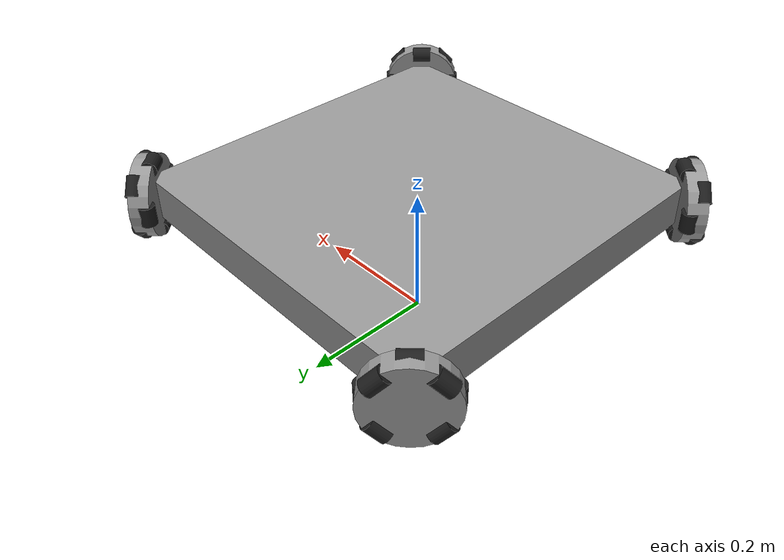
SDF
<?xml version="1.0" ?>
<!-- |    This document was autogenerated by xacro from /home/robostep/nav2-sample/src/OpenBase/openbase_gazebo_models/models/omni4/model.sdf.xacro | -->
<!-- |    EDITING THIS FILE BY HAND IS NOT RECOMMENDED                                 | -->
<sdf version="1.7">
  <model name="omni4_model">
    <pose>0 0 0.2 0 0 0</pose>
    <link name="body_link">
      <inertial>
        <mass>4.0</mass>
        <inertia>
          <ixx>0.0984</ixx>
          <ixy>0</ixy>
          <ixz>0</ixz>
          <iyy>0.0984</iyy>
          <iyz>0</iyz>
          <izz>0.19440000000000002</izz>
        </inertia>
      </inertial>
      <visual name="visual">
        <geometry>
          <box>
            <size>0.54 0.54 0.06</size>
          </box>
        </geometry>
        <material>
          <script>
            <uri>file://media/materials/scripts/gazebo.material</uri>
            <name>Gazebo/Grey</name>
          </script>
        </material>
      </visual>
      <collision name="collision">
        <geometry>
          <box>
            <size>0.54 0.54 0.06</size>
          </box>
        </geometry>
      </collision>
    </link>
    <include>
      <name>simple_omni_wheel_front_left_model</name>
      <uri>model://primitive_omni_wheel</uri>
      <pose>0.27 0.27 0 0 0 2.356194490192345</pose>
    </include>
    <include>
      <name>simple_omni_wheel_back_left_model</name>
      <uri>model://primitive_omni_wheel</uri>
      <pose>-0.27 0.27 0 0 0 3.9269908169872414</pose>
    </include>
    <include>
      <name>simple_omni_wheel_back_right_model</name>
      <uri>model://primitive_omni_wheel</uri>
      <pose>-0.2700000000000001 -0.27 0 0 0 5.497787143782138</pose>
    </include>
    <include>
      <name>simple_omni_wheel_front_right_model</name>
      <uri>model://primitive_omni_wheel</uri>
      <pose>0.26999999999999996 -0.2700000000000001 0 0 0 0.7853981633974483</pose>
    </include>
    <joint name="front_left_linear_joint" type="fixed">
      <parent>body_link</parent>
      <child>front_left_wheel_base_link</child>
      <axis>
        <limit>
          <lower>-0.1</lower>
          <upper>0.1</upper>
        </limit>
        <dynamics>
          <spring_reference>0.0</spring_reference>
          <spring_stiffness>2000.0</spring_stiffness>
          <damping>5.0</damping>
        </dynamics>
        <xyz>0 0 1</xyz>
      </axis>
      <physics>
        <ode>
          <implicit_spring_damper>true</implicit_spring_damper>
        </ode>
      </physics>
    </joint>
    <link name="front_left_wheel_base_link">
      <inertial>
        <mass>0.1</mass>
        <inertia>
          <ixx>0.0002</ixx>
          <ixy>0</ixy>
          <ixz>0</ixz>
          <iyy>0.0002</iyy>
          <iyz>0</iyz>
          <izz>0.0002</izz>
        </inertia>
      </inertial>
    </link>
    <joint name="front_left_rotational_joint" type="revolute">
      <parent>front_left_wheel_base_link</parent>
      <child>simple_omni_wheel_front_left_model::rim_link</child>
      <axis>
        <xyz>0 0 1</xyz>
        <dynamics>
          <spring_reference>0</spring_reference>
          <spring_stiffness>0</spring_stiffness>
          <damping>0</damping>
          <friction>0.0001</friction>
        </dynamics>
      </axis>
      <physics>
        <ode>
          <limit>
            <cfm>0</cfm>
            <erp>0.2</erp>
          </limit>
          <suspension>
            <cfm>0</cfm>
            <erp>0.2</erp>
          </suspension>
        </ode>
      </physics>
    </joint>
    <joint name="front_right_linear_joint" type="fixed">
      <parent>body_link</parent>
      <child>front_right_wheel_base_link</child>
      <axis>
        <limit>
          <lower>-0.1</lower>
          <upper>0.1</upper>
        </limit>
        <dynamics>
          <spring_reference>0.0</spring_reference>
          <spring_stiffness>2000.0</spring_stiffness>
          <damping>5.0</damping>
        </dynamics>
        <xyz>0 0 1</xyz>
      </axis>
      <physics>
        <ode>
          <implicit_spring_damper>true</implicit_spring_damper>
        </ode>
      </physics>
    </joint>
    <link name="front_right_wheel_base_link">
      <inertial>
        <mass>0.1</mass>
        <inertia>
          <ixx>0.0002</ixx>
          <ixy>0</ixy>
          <ixz>0</ixz>
          <iyy>0.0002</iyy>
          <iyz>0</iyz>
          <izz>0.0002</izz>
        </inertia>
      </inertial>
    </link>
    <joint name="front_right_rotational_joint" type="revolute">
      <parent>front_right_wheel_base_link</parent>
      <child>simple_omni_wheel_front_right_model::rim_link</child>
      <axis>
        <xyz>0 0 1</xyz>
        <dynamics>
          <spring_reference>0</spring_reference>
          <spring_stiffness>0</spring_stiffness>
          <damping>0</damping>
          <friction>0.0001</friction>
        </dynamics>
      </axis>
      <physics>
        <ode>
          <limit>
            <cfm>0</cfm>
            <erp>0.2</erp>
          </limit>
          <suspension>
            <cfm>0</cfm>
            <erp>0.2</erp>
          </suspension>
        </ode>
      </physics>
    </joint>
    <joint name="back_left_linear_joint" type="fixed">
      <parent>body_link</parent>
      <child>back_left_wheel_base_link</child>
      <axis>
        <limit>
          <lower>-0.1</lower>
          <upper>0.1</upper>
        </limit>
        <dynamics>
          <spring_reference>0.0</spring_reference>
          <spring_stiffness>2000.0</spring_stiffness>
          <damping>5.0</damping>
        </dynamics>
        <xyz>0 0 1</xyz>
      </axis>
      <physics>
        <ode>
          <implicit_spring_damper>true</implicit_spring_damper>
        </ode>
      </physics>
    </joint>
    <link name="back_left_wheel_base_link">
      <inertial>
        <mass>0.1</mass>
        <inertia>
          <ixx>0.0002</ixx>
          <ixy>0</ixy>
          <ixz>0</ixz>
          <iyy>0.0002</iyy>
          <iyz>0</iyz>
          <izz>0.0002</izz>
        </inertia>
      </inertial>
    </link>
    <joint name="back_left_rotational_joint" type="revolute">
      <parent>back_left_wheel_base_link</parent>
      <child>simple_omni_wheel_back_left_model::rim_link</child>
      <axis>
        <xyz>0 0 1</xyz>
        <dynamics>
          <spring_reference>0</spring_reference>
          <spring_stiffness>0</spring_stiffness>
          <damping>0</damping>
          <friction>0.0001</friction>
        </dynamics>
      </axis>
      <physics>
        <ode>
          <limit>
            <cfm>0</cfm>
            <erp>0.2</erp>
          </limit>
          <suspension>
            <cfm>0</cfm>
            <erp>0.2</erp>
          </suspension>
        </ode>
      </physics>
    </joint>
    <joint name="back_right_linear_joint" type="fixed">
      <parent>body_link</parent>
      <child>back_right_wheel_base_link</child>
      <axis>
        <limit>
          <lower>-0.1</lower>
          <upper>0.1</upper>
        </limit>
        <dynamics>
          <spring_reference>0.0</spring_reference>
          <spring_stiffness>2000.0</spring_stiffness>
          <damping>5.0</damping>
        </dynamics>
        <xyz>0 0 1</xyz>
      </axis>
      <physics>
        <ode>
          <implicit_spring_damper>true</implicit_spring_damper>
        </ode>
      </physics>
    </joint>
    <link name="back_right_wheel_base_link">
      <inertial>
        <mass>0.1</mass>
        <inertia>
          <ixx>0.0002</ixx>
          <ixy>0</ixy>
          <ixz>0</ixz>
          <iyy>0.0002</iyy>
          <iyz>0</iyz>
          <izz>0.0002</izz>
        </inertia>
      </inertial>
    </link>
    <joint name="back_right_rotational_joint" type="revolute">
      <parent>back_right_wheel_base_link</parent>
      <child>simple_omni_wheel_back_right_model::rim_link</child>
      <axis>
        <xyz>0 0 1</xyz>
        <dynamics>
          <spring_reference>0</spring_reference>
          <spring_stiffness>0</spring_stiffness>
          <damping>0</damping>
          <friction>0.0001</friction>
        </dynamics>
      </axis>
      <physics>
        <ode>
          <limit>
            <cfm>0</cfm>
            <erp>0.2</erp>
          </limit>
          <suspension>
            <cfm>0</cfm>
            <erp>0.2</erp>
          </suspension>
        </ode>
      </physics>
    </joint>
    <plugin filename="libgazebo_ros_omni_drive.so" name="omni_drive">
      <joint>front_left_rotational_joint</joint>
      <joint>front_right_rotational_joint</joint>
      <joint>back_left_rotational_joint</joint>
      <joint>back_right_rotational_joint</joint>
      <wheel_radius>0.06</wheel_radius>
    </plugin>
  </model>
</sdf>

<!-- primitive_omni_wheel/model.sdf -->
<!-- |    This document was autogenerated by xacro from /home/robostep/nav2-sample/src/OpenBase/openbase_gazebo_models/models/primitive_omni_wheel/model.sdf.xacro | -->
<!-- |    EDITING THIS FILE BY HAND IS NOT RECOMMENDED                                 | -->
<sdf version="1.7">
  <model name="primitive_omni_wheel_model">
    <pose>0 0 0.1 0 0 0</pose>
    <link name="rim_link">
      <pose>0 0 0 1.5707963267948966 0 0</pose>
      <inertial>
        <mass>0.3</mass>
        <inertia>
          <ixx>0.000291025</ixx>
          <ixy>0</ixy>
          <ixz>0</ixz>
          <iyy>0.000291025</iyy>
          <iyz>0</iyz>
          <izz>0.00054</izz>
        </inertia>
      </inertial>
      <visual name="visual">
        <geometry>
          <cylinder>
            <radius>0.06</radius>
            <length>0.029</length>
          </cylinder>
        </geometry>
        <material>
          <script>
            <uri>file://media/materials/scripts/gazebo.material</uri>
            <name>Gazebo/Grey</name>
          </script>
        </material>
      </visual>
      <collision name="collision">
        <geometry>
          <cylinder>
            <radius>0.06</radius>
            <length>0.029</length>
          </cylinder>
        </geometry>
        <surface>
          <friction>
            <ode>
              <mu>1</mu>
              <mu2>1</mu2>
              <fdir1>0 0 0</fdir1>
              <slip1>0</slip1>
              <slip2>0</slip2>
            </ode>
          </friction>
        </surface>
      </collision>
    </link>
    <link name="roller_link_0_0">
      <pose>0.05 0.008 0.0 0 -0.0 0</pose>
      <inertial>
        <mass>0.03</mass>
        <inertia>
          <ixx>3.5027999999999997e-06</ixx>
          <ixy>0</ixy>
          <ixz>0</ixz>
          <iyy>3.5027999999999997e-06</iyy>
          <iyz>0</iyz>
          <izz>2.5055999999999998e-06</izz>
        </inertia>
      </inertial>
      <visual name="visual">
        <geometry>
          <cylinder>
            <radius>0.012</radius>
            <length>0.03</length>
          </cylinder>
        </geometry>
        <material>
          <script>
            <uri>file://media/materials/scripts/gazebo.material</uri>
            <name>Gazebo/Black</name>
          </script>
        </material>
      </visual>
      <collision name="collision">
        <geometry>
          <cylinder>
            <radius>0.012</radius>
            <length>0.03</length>
          </cylinder>
        </geometry>
        <surface>
          <friction>
            <ode>
              <mu>1</mu>
              <mu2>1</mu2>
              <fdir1>0 0 0</fdir1>
              <slip1>0</slip1>
              <slip2>0</slip2>
            </ode>
          </friction>
        </surface>
      </collision>
    </link>
    <joint name="omni_wheel_joint_0_0" type="revolute">
      <parent>rim_link</parent>
      <child>roller_link_0_0</child>
      <axis>
        <xyz>0 0 1</xyz>
        <dynamics>
          <spring_reference>0</spring_reference>
          <spring_stiffness>0</spring_stiffness>
          <damping>0</damping>
          <friction>0.001</friction>
        </dynamics>
      </axis>
    </joint>
    <link name="roller_link_1_0">
      <pose>0.03535533905932738 -0.008 0.035355339059327376 0 -0.7853981633974483 0</pose>
      <inertial>
        <mass>0.03</mass>
        <inertia>
          <ixx>3.5027999999999997e-06</ixx>
          <ixy>0</ixy>
          <ixz>0</ixz>
          <iyy>3.5027999999999997e-06</iyy>
          <iyz>0</iyz>
          <izz>2.5055999999999998e-06</izz>
        </inertia>
      </inertial>
      <visual name="visual">
        <geometry>
          <cylinder>
            <radius>0.012</radius>
            <length>0.03</length>
          </cylinder>
        </geometry>
        <material>
          <script>
            <uri>file://media/materials/scripts/gazebo.material</uri>
            <name>Gazebo/Black</name>
          </script>
        </material>
      </visual>
      <collision name="collision">
        <geometry>
          <cylinder>
            <radius>0.012</radius>
            <length>0.03</length>
          </cylinder>
        </geometry>
        <surface>
          <friction>
            <ode>
              <mu>1</mu>
              <mu2>1</mu2>
              <fdir1>0 0 0</fdir1>
              <slip1>0</slip1>
              <slip2>0</slip2>
            </ode>
          </friction>
        </surface>
      </collision>
    </link>
    <joint name="omni_wheel_joint_1_0" type="revolute">
      <parent>rim_link</parent>
      <child>roller_link_1_0</child>
      <axis>
        <xyz>0 0 1</xyz>
        <dynamics>
          <spring_reference>0</spring_reference>
          <spring_stiffness>0</spring_stiffness>
          <damping>0</damping>
          <friction>0.001</friction>
        </dynamics>
      </axis>
    </joint>
    <link name="roller_link_0_1">
      <pose>3.061616997868383e-18 0.008 0.05 0 -1.5707963267948966 0</pose>
      <inertial>
        <mass>0.03</mass>
        <inertia>
          <ixx>3.5027999999999997e-06</ixx>
          <ixy>0</ixy>
          <ixz>0</ixz>
          <iyy>3.5027999999999997e-06</iyy>
          <iyz>0</iyz>
          <izz>2.5055999999999998e-06</izz>
        </inertia>
      </inertial>
      <visual name="visual">
        <geometry>
          <cylinder>
            <radius>0.012</radius>
            <length>0.03</length>
          </cylinder>
        </geometry>
        <material>
          <script>
            <uri>file://media/materials/scripts/gazebo.material</uri>
            <name>Gazebo/Black</name>
          </script>
        </material>
      </visual>
      <collision name="collision">
        <geometry>
          <cylinder>
            <radius>0.012</radius>
            <length>0.03</length>
          </cylinder>
        </geometry>
        <surface>
          <friction>
            <ode>
              <mu>1</mu>
              <mu2>1</mu2>
              <fdir1>0 0 0</fdir1>
              <slip1>0</slip1>
              <slip2>0</slip2>
            </ode>
          </friction>
        </surface>
      </collision>
    </link>
    <joint name="omni_wheel_joint_0_1" type="revolute">
      <parent>rim_link</parent>
      <child>roller_link_0_1</child>
      <axis>
        <xyz>0 0 1</xyz>
        <dynamics>
          <spring_reference>0</spring_reference>
          <spring_stiffness>0</spring_stiffness>
          <damping>0</damping>
          <friction>0.001</friction>
        </dynamics>
      </axis>
    </joint>
    <link name="roller_link_1_1">
      <pose>-0.035355339059327376 -0.008 0.03535533905932738 0 -2.356194490192345 0</pose>
      <inertial>
        <mass>0.03</mass>
        <inertia>
          <ixx>3.5027999999999997e-06</ixx>
          <ixy>0</ixy>
          <ixz>0</ixz>
          <iyy>3.5027999999999997e-06</iyy>
          <iyz>0</iyz>
          <izz>2.5055999999999998e-06</izz>
        </inertia>
      </inertial>
      <visual name="visual">
        <geometry>
          <cylinder>
            <radius>0.012</radius>
            <length>0.03</length>
          </cylinder>
        </geometry>
        <material>
          <script>
            <uri>file://media/materials/scripts/gazebo.material</uri>
            <name>Gazebo/Black</name>
          </script>
        </material>
      </visual>
      <collision name="collision">
        <geometry>
          <cylinder>
            <radius>0.012</radius>
            <length>0.03</length>
          </cylinder>
        </geometry>
        <surface>
          <friction>
            <ode>
              <mu>1</mu>
              <mu2>1</mu2>
              <fdir1>0 0 0</fdir1>
              <slip1>0</slip1>
              <slip2>0</slip2>
            </ode>
          </friction>
        </surface>
      </collision>
    </link>
    <joint name="omni_wheel_joint_1_1" type="revolute">
      <parent>rim_link</parent>
      <child>roller_link_1_1</child>
      <axis>
        <xyz>0 0 1</xyz>
        <dynamics>
          <spring_reference>0</spring_reference>
          <spring_stiffness>0</spring_stiffness>
          <damping>0</damping>
          <friction>0.001</friction>
        </dynamics>
      </axis>
    </joint>
    <link name="roller_link_0_2">
      <pose>-0.05 0.008 6.123233995736766e-18 0 -3.141592653589793 0</pose>
      <inertial>
        <mass>0.03</mass>
        <inertia>
          <ixx>3.5027999999999997e-06</ixx>
          <ixy>0</ixy>
          <ixz>0</ixz>
          <iyy>3.5027999999999997e-06</iyy>
          <iyz>0</iyz>
          <izz>2.5055999999999998e-06</izz>
        </inertia>
      </inertial>
      <visual name="visual">
        <geometry>
          <cylinder>
            <radius>0.012</radius>
            <length>0.03</length>
          </cylinder>
        </geometry>
        <material>
          <script>
            <uri>file://media/materials/scripts/gazebo.material</uri>
            <name>Gazebo/Black</name>
          </script>
        </material>
      </visual>
      <collision name="collision">
        <geometry>
          <cylinder>
            <radius>0.012</radius>
            <length>0.03</length>
          </cylinder>
        </geometry>
        <surface>
          <friction>
            <ode>
              <mu>1</mu>
              <mu2>1</mu2>
              <fdir1>0 0 0</fdir1>
              <slip1>0</slip1>
              <slip2>0</slip2>
            </ode>
          </friction>
        </surface>
      </collision>
    </link>
    <joint name="omni_wheel_joint_0_2" type="revolute">
      <parent>rim_link</parent>
      <child>roller_link_0_2</child>
      <axis>
        <xyz>0 0 1</xyz>
        <dynamics>
          <spring_reference>0</spring_reference>
          <spring_stiffness>0</spring_stiffness>
          <damping>0</damping>
          <friction>0.001</friction>
        </dynamics>
      </axis>
    </joint>
    <link name="roller_link_1_2">
      <pose>-0.03535533905932738 -0.008 -0.035355339059327376 0 -3.9269908169872414 0</pose>
      <inertial>
        <mass>0.03</mass>
        <inertia>
          <ixx>3.5027999999999997e-06</ixx>
          <ixy>0</ixy>
          <ixz>0</ixz>
          <iyy>3.5027999999999997e-06</iyy>
          <iyz>0</iyz>
          <izz>2.5055999999999998e-06</izz>
        </inertia>
      </inertial>
      <visual name="visual">
        <geometry>
          <cylinder>
            <radius>0.012</radius>
            <length>0.03</length>
          </cylinder>
        </geometry>
        <material>
          <script>
            <uri>file://media/materials/scripts/gazebo.material</uri>
            <name>Gazebo/Black</name>
          </script>
        </material>
      </visual>
      <collision name="collision">
        <geometry>
          <cylinder>
            <radius>0.012</radius>
            <length>0.03</length>
          </cylinder>
        </geometry>
        <surface>
          <friction>
            <ode>
              <mu>1</mu>
              <mu2>1</mu2>
              <fdir1>0 0 0</fdir1>
              <slip1>0</slip1>
              <slip2>0</slip2>
            </ode>
          </friction>
        </surface>
      </collision>
    </link>
    <joint name="omni_wheel_joint_1_2" type="revolute">
      <parent>rim_link</parent>
      <child>roller_link_1_2</child>
      <axis>
        <xyz>0 0 1</xyz>
        <dynamics>
          <spring_reference>0</spring_reference>
          <spring_stiffness>0</spring_stiffness>
          <damping>0</damping>
          <friction>0.001</friction>
        </dynamics>
      </axis>
    </joint>
    <link name="roller_link_0_3">
      <pose>-9.184850993605149e-18 0.008 -0.05 0 -4.71238898038469 0</pose>
      <inertial>
        <mass>0.03</mass>
        <inertia>
          <ixx>3.5027999999999997e-06</ixx>
          <ixy>0</ixy>
          <ixz>0</ixz>
          <iyy>3.5027999999999997e-06</iyy>
          <iyz>0</iyz>
          <izz>2.5055999999999998e-06</izz>
        </inertia>
      </inertial>
      <visual name="visual">
        <geometry>
          <cylinder>
            <radius>0.012</radius>
            <length>0.03</length>
          </cylinder>
        </geometry>
        <material>
          <script>
            <uri>file://media/materials/scripts/gazebo.material</uri>
            <name>Gazebo/Black</name>
          </script>
        </material>
      </visual>
      <collision name="collision">
        <geometry>
          <cylinder>
            <radius>0.012</radius>
            <length>0.03</length>
          </cylinder>
        </geometry>
        <surface>
          <friction>
            <ode>
              <mu>1</mu>
              <mu2>1</mu2>
              <fdir1>0 0 0</fdir1>
              <slip1>0</slip1>
              <slip2>0</slip2>
            </ode>
          </friction>
        </surface>
      </collision>
    </link>
    <joint name="omni_wheel_joint_0_3" type="revolute">
      <parent>rim_link</parent>
      <child>roller_link_0_3</child>
      <axis>
        <xyz>0 0 1</xyz>
        <dynamics>
          <spring_reference>0</spring_reference>
          <spring_stiffness>0</spring_stiffness>
          <damping>0</damping>
          <friction>0.001</friction>
        </dynamics>
      </axis>
    </joint>
    <link name="roller_link_1_3">
      <pose>0.03535533905932737 -0.008 -0.03535533905932738 0 -5.497787143782138 0</pose>
      <inertial>
        <mass>0.03</mass>
        <inertia>
          <ixx>3.5027999999999997e-06</ixx>
          <ixy>0</ixy>
          <ixz>0</ixz>
          <iyy>3.5027999999999997e-06</iyy>
          <iyz>0</iyz>
          <izz>2.5055999999999998e-06</izz>
        </inertia>
      </inertial>
      <visual name="visual">
        <geometry>
          <cylinder>
            <radius>0.012</radius>
            <length>0.03</length>
          </cylinder>
        </geometry>
        <material>
          <script>
            <uri>file://media/materials/scripts/gazebo.material</uri>
            <name>Gazebo/Black</name>
          </script>
        </material>
      </visual>
      <collision name="collision">
        <geometry>
          <cylinder>
            <radius>0.012</radius>
            <length>0.03</length>
          </cylinder>
        </geometry>
        <surface>
          <friction>
            <ode>
              <mu>1</mu>
              <mu2>1</mu2>
              <fdir1>0 0 0</fdir1>
              <slip1>0</slip1>
              <slip2>0</slip2>
            </ode>
          </friction>
        </surface>
      </collision>
    </link>
    <joint name="omni_wheel_joint_1_3" type="revolute">
      <parent>rim_link</parent>
      <child>roller_link_1_3</child>
      <axis>
        <xyz>0 0 1</xyz>
        <dynamics>
          <spring_reference>0</spring_reference>
          <spring_stiffness>0</spring_stiffness>
          <damping>0</damping>
          <friction>0.001</friction>
        </dynamics>
      </axis>
    </joint>
  </model>
</sdf>
